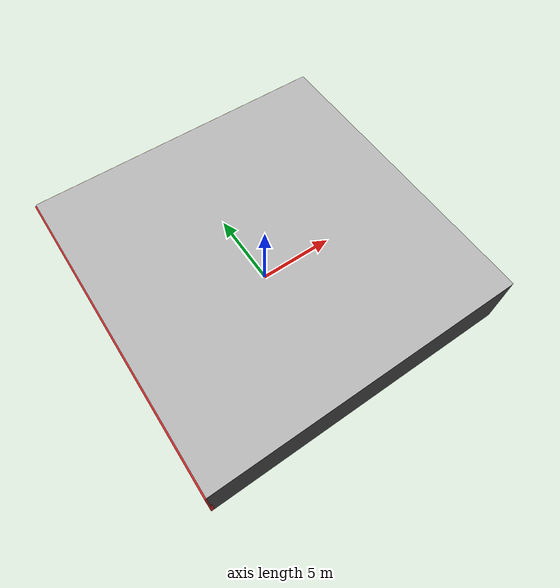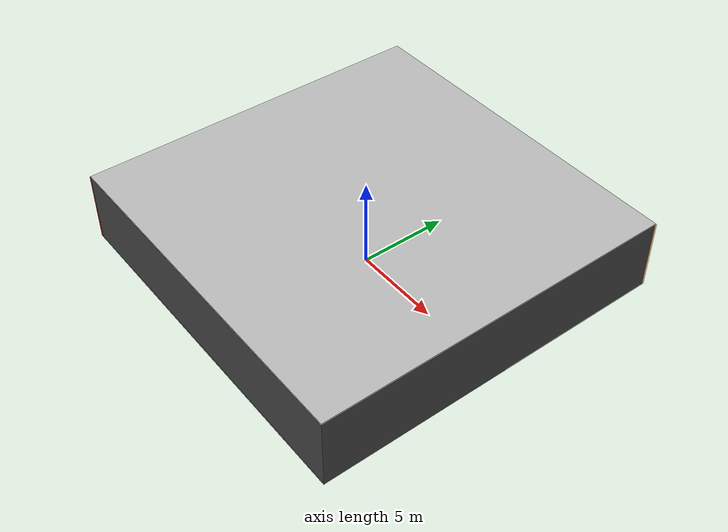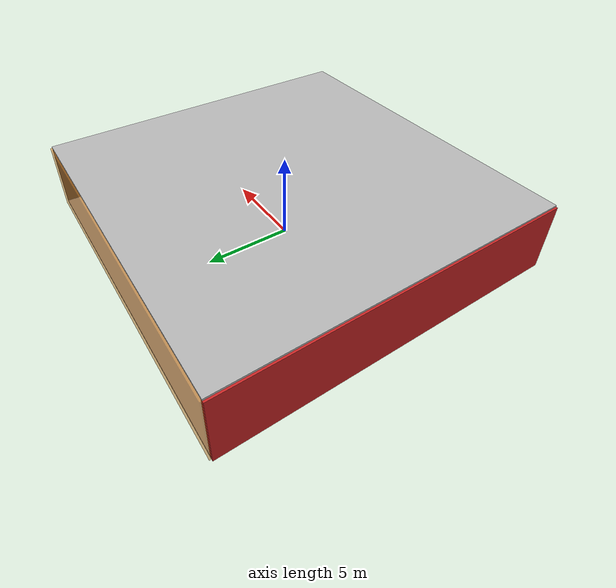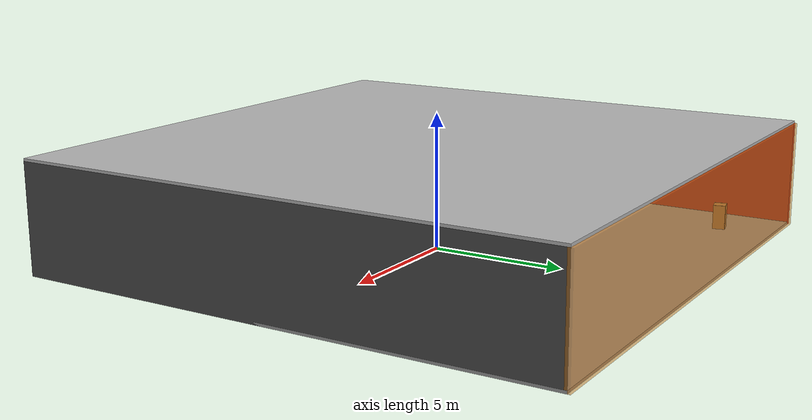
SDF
<sdf version="1.4">
 <world name="default">
  <physics type="ode">
   <max_step_size>0.001</max_step_size>
   <real_time_factor>1</real_time_factor>
   <real_time_update_rate>1000</real_time_update_rate>
   <gravity>0 0 -9.8</gravity>
  </physics>
  <scene><ambient>0.4 0.4 0.4 1</ambient><background>0.7 0.7 0.7 1</background><shadows>1</shadows></scene>
  <model name="Surrounding">
   <static>1</static>
   <link name="Ceiling">
    <collision name="Ceiling_Collision"><geometry><box><size>20 20 0.1</size></box></geometry></collision>
    <visual name="Ceiling_Visual">
     <geometry><box><size>20 20 0.1</size></box></geometry>
     <material>
      <script><uri>file://media/materials/scripts/gazebo.material</uri><name>Gazebo/JointAnchor</name></script>
     </material>
    </visual>
    <pose>0 0 4.05 0 0 0</pose>
   </link>
   <link name="Wall_South">
    <collision name="Wall_South_Collision">
     <geometry><box><size>20 0 4</size></box></geometry>
     <pose>0 0 2 0 -0 0</pose>
    </collision>
    <visual name="Wall_South_Visual">
     <pose>0 0 2 0 -0 0</pose>
     <geometry><box><size>20 0 4</size></box></geometry>
     <material>
      <script><uri>file://media/materials/scripts/gazebo.material</uri><name>Gazebo/DarkGrey</name></script>
     </material>
    </visual>
    <velocity_decay><linear>0</linear><angular>0</angular></velocity_decay>
    <pose>0 -10 0 0 -0 0</pose>
   </link>
   <link name="Wall_East">
    <collision name="Wall_21_Collision">
     <geometry><box><size>20 0 4</size></box></geometry>
     <pose>0 0 2 0 -0 0</pose>
    </collision>
    <visual name="Wall_21_Visual">
     <pose>0 0 2 0 -0 0</pose>
     <geometry><box><size>20 0 4</size></box></geometry>
     <material>
      <script><uri>file://media/materials/scripts/gazebo.material</uri><name>Gazebo/Road</name></script>
     </material>
    </visual>
    <velocity_decay><linear>0</linear><angular>0</angular></velocity_decay>
    <pose>10 0 0 0 -0 1.5708</pose>
   </link>
   <link name="Wall_North">
    <collision name="Wall_22_Collision">
     <geometry><box><size>20 0.2 4</size></box></geometry>
     <pose>0 0 2 0 -0 0</pose>
    </collision>
    <visual name="Wall_22_Visual">
     <pose>0 0 2 0 -0 0</pose>
     <geometry><box><size>20 0.2 4</size></box></geometry>
     <material>
      <script>
       <uri>file://media/materials/scripts/gazebo.material</uri>
       <name>Gazebo/OrangeTransparent</name>
      </script>
     </material>
    </visual>
    <velocity_decay><linear>0</linear><angular>0</angular></velocity_decay>
    <pose>0 10 0 0 -0 0</pose>
   </link>
   <link name="Wall_West">
    <collision name="Wall_23_Collision">
     <geometry><box><size>20 0.2 4</size></box></geometry>
     <pose>0 0 2 0 -0 0</pose>
    </collision>
    <visual name="Wall_23_Visual">
     <pose>0 0 2 0 -0 0</pose>
     <geometry><box><size>20 0.2 4</size></box></geometry>
     <material>
      <script><uri>file://media/materials/scripts/gazebo.material</uri><name>Gazebo/RedGlow</name></script>
     </material>
    </visual>
    <velocity_decay><linear>0</linear><angular>0</angular></velocity_decay>
    <pose>-10 0 0 0 0 -1.5708</pose>
   </link>
   <link name="Ground_link">
    <collision name="collision">
     <pose>0 0 .05 0 -0 0</pose>
     <geometry><box><size>20 20 0.1</size></box></geometry>
    </collision>
    <visual name="visual">
     <pose>0 0 .05 0 -0 0</pose>
     <geometry><box><size>20 20 0.1</size></box></geometry>
     <material>
      <script><uri>file://media/materials/scripts/gazebo.material</uri><name>Gazebo/GreyGradientSky</name></script>
     </material>
    </visual>
   </link>
   <static>1</static>
  </model>
  <spherical_coordinates>
   <surface_model>EARTH_WGS84</surface_model>
   <latitude_deg>0</latitude_deg>
   <longitude_deg>0</longitude_deg>
   <elevation>0</elevation>
   <heading_deg>0</heading_deg>
  </spherical_coordinates>
  <light name="lightball_0" type="diffuse">
   <diffuse>0.8 0.8 0.8 1</diffuse>
   <specular>0.2 0.2 0.2 1</specular>
   <attenuation>
    <range>100</range>
    <constant>0.7</constant>
    <linear>0.01</linear>
    <quadratic>0.001</quadratic>
   </attenuation>
   <direction>-0.5 0.1 -0.9</direction>
   <pose>9.49060853418 9.05995940713 3.59815514329 0 0 0</pose>
  </light>
  <light name="lightball_1" type="diffuse">
   <diffuse>0.8 0.8 0.8 1</diffuse>
   <specular>0.2 0.2 0.2 1</specular>
   <attenuation>
    <range>100</range>
    <constant>0.7</constant>
    <linear>0.01</linear>
    <quadratic>0.001</quadratic>
   </attenuation>
   <direction>-0.5 0.1 -0.9</direction>
   <pose>-0.00990648568518 -5.43381148068 3.22460258842 0 0 0</pose>
  </light>
  <light name="lightball_2" type="diffuse">
   <diffuse>0.8 0.8 0.8 1</diffuse>
   <specular>0.2 0.2 0.2 1</specular>
   <attenuation>
    <range>100</range>
    <constant>0.7</constant>
    <linear>0.01</linear>
    <quadratic>0.001</quadratic>
   </attenuation>
   <direction>-0.5 0.1 -0.9</direction>
   <pose>9.71119735181 -7.23669638261 2.13982998677 0 0 0</pose>
  </light>
  <light name="lightball_3" type="diffuse">
   <diffuse>0.8 0.8 0.8 1</diffuse>
   <specular>0.2 0.2 0.2 1</specular>
   <attenuation>
    <range>100</range>
    <constant>0.7</constant>
    <linear>0.01</linear>
    <quadratic>0.001</quadratic>
   </attenuation>
   <direction>-0.5 0.1 -0.9</direction>
   <pose>-1.05671847103 2.94250130341 1.85032102247 0 0 0</pose>
  </light>
  <include><uri>model://cabinet</uri><pose>-6.95616640675 -5.21517612203 0 0 0 1.26055139302</pose></include>
  <include><uri>model://cabinet</uri><pose>-7.73412358719 7.98298128346 0 0 0 1.78861913553</pose></include>
  <include>
   <uri>model://construction_cone</uri>
   <pose>1.97230541238 -3.80735755098 0 0 0 2.34319535463</pose>
  </include>
  <include><uri>model://cabinet</uri><pose>6.84200360046 4.10092961476 0 0 0 2.29285137397</pose></include>
 </world>
</sdf>

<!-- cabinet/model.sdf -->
<sdf version="1.5">
  <model name="cabinet">
    <static>true</static>
    <link name="cabinet_bottom_plate">
      <inertial>
        <pose>0 0 -1 0 0 0</pose>
        <inertia>
          <ixx>2.050000</ixx>
          <ixy>0</ixy>
          <ixz>0</ixz>
          <iyy>2.050000</iyy>
          <iyz>0</iyz>
          <izz>2.050000</izz>
        </inertia>
        <mass>25.000000</mass>
      </inertial>
      <collision name="cabinet_bottom_plate_geom">
        <pose>0 0 0.010000 0 0 0</pose>
        <geometry>
          <box>
            <size>0.450000 0.450000 0.020000</size>
          </box>
        </geometry>
      </collision>
      <visual name="cabinet_bottom_plate_geom_visual">
        <pose>0 0 0.010000 0 0 0</pose>
        <geometry>
          <box>
            <size>0.450000 0.450000 0.020000</size>
          </box>
        </geometry>
        <material>
          <script>
            <uri>model://media/materials/scripts/gazebo.material</uri>
            <name>Gazebo/Wood</name>
          </script>
        </material>
      </visual>
      <collision name="cabinet_bottom_plate_geom_cabinet_back_plate">
        <pose>0.235000 0 0.510000 0 0 0</pose>
        <geometry>
          <box>
            <size>0.020000 0.450000 1.020000</size>
          </box>
        </geometry>
      </collision>
      <visual name="cabinet_bottom_plate_geom_cabinet_back_plate_visual">
        <pose>0.235000 0 0.510000 0 0 0</pose>
        <geometry>
          <box>
            <size>0.020000 0.450000 1.020000</size>
          </box>
        </geometry>
        <material>
          <script>
            <uri>model://media/materials/scripts/gazebo.material</uri>
            <name>Gazebo/Wood</name>
          </script>
        </material>
      </visual>
      <collision name="cabinet_bottom_plate_geom_cabinet_left_plate">
        <pose>0 0.235000 0.510000 0 0 0</pose>
        <geometry>
          <box>
            <size>0.450000 0.020000 1.020000</size>
          </box>
        </geometry>
      </collision>
      <visual name="cabinet_bottom_plate_geom_cabinet_left_plate_visual">
        <pose>0 0.235000 0.510000 0 0 0</pose>
        <geometry>
          <box>
            <size>0.450000 0.020000 1.020000</size>
          </box>
        </geometry>
        <material>
          <script>
            <uri>model://media/materials/scripts/gazebo.material</uri>
            <name>Gazebo/Wood</name>
          </script>
        </material>
      </visual>
      <collision name="cabinet_bottom_plate_geom_cabinet_middle_plate">
        <pose>0 0 0.510000 0 0 0</pose>
        <geometry>
          <box>
            <size>0.450000 0.450000 0.020000</size>
          </box>
        </geometry>
      </collision>
      <visual name="cabinet_bottom_plate_geom_cabinet_middle_plate_visual">
        <pose>0 0 0.510000 0 0 0</pose>
        <geometry>
          <box>
            <size>0.450000 0.450000 0.020000</size>
          </box>
        </geometry>
        <material>
          <script>
            <uri>model://media/materials/scripts/gazebo.material</uri>
            <name>Gazebo/Wood</name>
          </script>
        </material>
      </visual>
      <collision name="cabinet_bottom_plate_geom_cabinet_right_plate">
        <pose>0 -0.235000 0.510000 0 0 0</pose>
        <geometry>
          <box>
            <size>0.450000 0.020000 1.020000</size>
          </box>
        </geometry>
      </collision>
      <visual name="cabinet_bottom_plate_geom_cabinet_right_plate_visual">
        <pose>0 -0.235000 0.510000 0 0 0</pose>
        <geometry>
          <box>
            <size>0.450000 0.020000 1.020000</size>
          </box>
        </geometry>
        <material>
          <script>
            <uri>model://media/materials/scripts/gazebo.material</uri>
            <name>Gazebo/Wood</name>
          </script>
        </material>
      </visual>
      <collision name="cabinet_bottom_plate_geom_cabinet_top_plate">
        <pose>0 0 1.010000 0 0 0</pose>
        <geometry>
          <box>
            <size>0.450000 0.450000 0.020000</size>
          </box>
        </geometry>
      </collision>
      <visual name="cabinet_bottom_plate_geom_cabinet_top_plate_visual">
        <pose>0 0 1.010000 0 0 0</pose>
        <geometry>
          <box>
            <size>0.450000 0.450000 0.020000</size>
          </box>
        </geometry>
        <material>
          <script>
            <uri>model://media/materials/scripts/gazebo.material</uri>
            <name>Gazebo/Wood</name>
          </script>
        </material>
      </visual>
    </link>
  </model>
</sdf>

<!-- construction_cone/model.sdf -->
<sdf version="1.5">
  <model name="Construction Cone">
    <link name="link">
      <collision name="collision">
        <geometry>
          <mesh>
            <scale>10 10 10</scale>
            <uri>file://isr-testbed/construction_cone/meshes/construction_cone.dae</uri>
          </mesh>
        </geometry>
      </collision>
      <visual name="visual">
        <geometry>
          <mesh>
            <scale>10 10 10</scale>
            <uri>file://isr-testbed/construction_cone/meshes/construction_cone.dae</uri>
          </mesh>
        </geometry>
      </visual>
    </link>
  </model>
</sdf>
